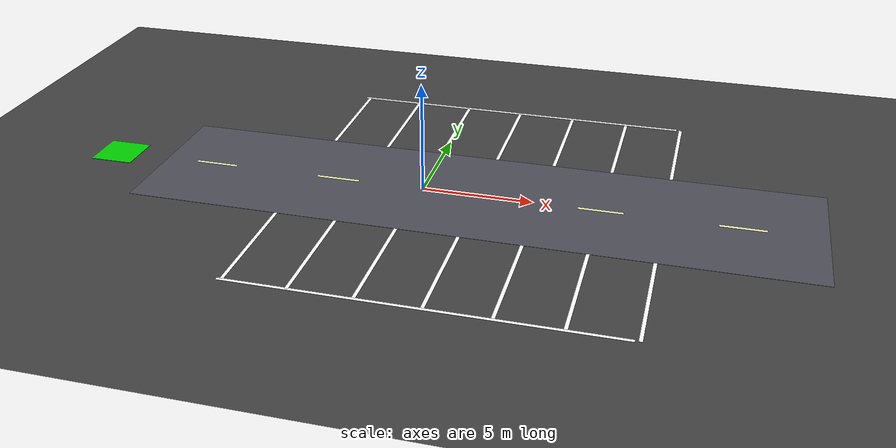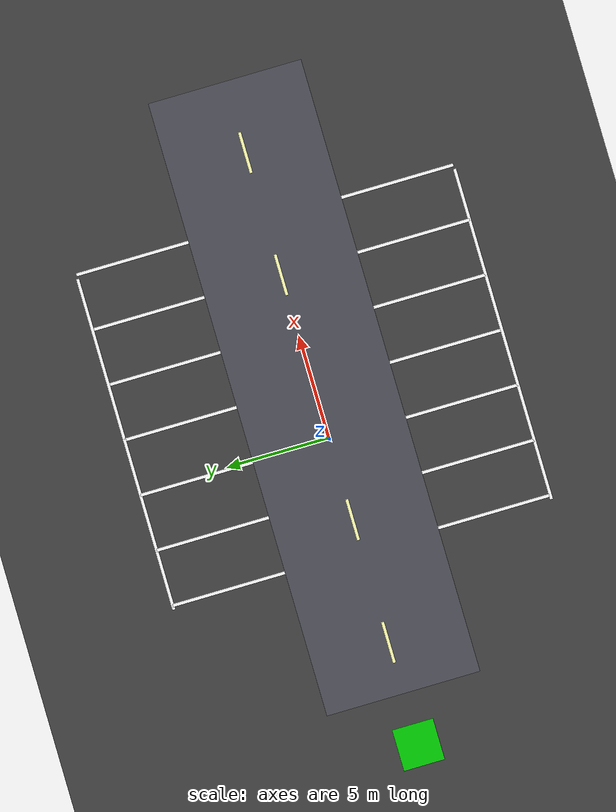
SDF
<?xml version="1.0" ?>
<sdf version="1.6">
  <world name="parking_lot_a">

    <!-- Sun / lighting -->
    <include>
      <uri>model://sun</uri>
    </include>

    <!-- Physics -->
    <physics type="ode">
      <real_time_update_rate>1000</real_time_update_rate>
      <max_step_size>0.001</max_step_size>
    </physics>

    <!-- Ground (asphalt) -->
    <model name="ground_plane">
      <static>true</static>
      <link name="link">
        <collision name="collision">
          <geometry>
            <plane>
              <normal>0 0 1</normal>
              <size>50 50</size>
            </plane>
          </geometry>
        </collision>
        <visual name="visual">
          <geometry>
            <plane>
              <normal>0 0 1</normal>
              <size>50 50</size>
            </plane>
          </geometry>
          <material>
            <ambient>0.25 0.25 0.25 1</ambient>
            <diffuse>0.25 0.25 0.25 1</diffuse>
          </material>
        </visual>
      </link>
    </model>

    <!-- Entrance marker (green box) -->
    <model name="entrance_marker">
      <static>true</static>
      <link name="link">
        <visual name="entrance_visual">
          <pose>-15 0 0 0 0 0</pose>
          <geometry>
            <box>
              <size>2 2 0.02</size>
            </box>
          </geometry>
          <material>
            <diffuse>0 0.8 0 1</diffuse>
          </material>
        </visual>
      </link>
    </model>

    <!-- Central road (horizontal) -->
    <!-- 7.5 m wide for comfortable two-way traffic -->
    <model name="main_lane">
      <static>true</static>
      <link name="link">
        <visual name="lane_surface">
          <pose>2.5 0 0.001 0 0 0</pose>
          <geometry>
            <box>
              <size>30 7.5 0.01</size>
            </box>
          </geometry>
          <material>
            <ambient>0.20 0.20 0.22 1</ambient>
            <diffuse>0.30 0.30 0.34 1</diffuse>
          </material>
        </visual>

        <!-- Center dashed line -->
        <visual name="dash1">
          <pose>-10 0 0.002 0 0 0</pose>
          <geometry><box><size>2 0.15 0.01</size></box></geometry>
          <material><diffuse>1 1 0.7 1</diffuse></material>
        </visual>
        <visual name="dash2">
          <pose>-4 0 0.002 0 0 0</pose>
          <geometry><box><size>2 0.15 0.01</size></box></geometry>
          <material><diffuse>1 1 0.7 1</diffuse></material>
        </visual>
        <visual name="dash3">
          <pose>2 0 0.002 0 0 0</pose>
          <geometry><box><size>2 0.15 0.01</size></box></geometry>
          <material><diffuse>1 1 0.7 1</diffuse></material>
        </visual>
        <visual name="dash4">
          <pose>8 0 0.002 0 0 0</pose>
          <geometry><box><size>2 0.15 0.01</size></box></geometry>
          <material><diffuse>1 1 0.7 1</diffuse></material>
        </visual>
        <visual name="dash5">
          <pose>14 0 0.002 0 0 0</pose>
          <geometry><box><size>2 0.15 0.01</size></box></geometry>
          <material><diffuse>1 1 0.7 1</diffuse></material>
        </visual>
      </link>
    </model>

    <!-- Parking bays with shared lines (realistic) -->
    <!-- Bay size ~2.7m wide x 5.5m deep -->
    <model name="parking_bays">
      <static>true</static>
      <link name="link">

        <!-- ===== Top row (A1..A6) ===== -->
        <!-- Continuous back wall -->
        <visual name="A_back_wall">
          <pose>2.4 9.25 0.002 0 0 0</pose>
          <geometry><box><size>16.2 0.15 0.01</size></box></geometry>
          <material><diffuse>1 1 1 1</diffuse></material>
        </visual>

        <!-- Left boundary of A1 -->
        <visual name="A1_left">
          <pose>-5.5 6.5 0.002 0 0 0</pose>
          <geometry><box><size>0.15 5.5 0.01</size></box></geometry>
          <material><diffuse>1 1 1 1</diffuse></material>
        </visual>

        <!-- Shared dividers -->
        <visual name="A1_A2_divide">
          <pose>-2.8 6.5 0.002 0 0 0</pose>
          <geometry><box><size>0.15 5.5 0.01</size></box></geometry>
          <material><diffuse>1 1 1 1</diffuse></material>
        </visual>
        <visual name="A2_A3_divide">
          <pose>-0.1 6.5 0.002 0 0 0</pose>
          <geometry><box><size>0.15 5.5 0.01</size></box></geometry>
          <material><diffuse>1 1 1 1</diffuse></material>
        </visual>
        <visual name="A3_A4_divide">
          <pose>2.6 6.5 0.002 0 0 0</pose>
          <geometry><box><size>0.15 5.5 0.01</size></box></geometry>
          <material><diffuse>1 1 1 1</diffuse></material>
        </visual>
        <visual name="A4_A5_divide">
          <pose>5.3 6.5 0.002 0 0 0</pose>
          <geometry><box><size>0.15 5.5 0.01</size></box></geometry>
          <material><diffuse>1 1 1 1</diffuse></material>
        </visual>
        <visual name="A5_A6_divide">
          <pose>8.0 6.5 0.002 0 0 0</pose>
          <geometry><box><size>0.15 5.5 0.01</size></box></geometry>
          <material><diffuse>1 1 1 1</diffuse></material>
        </visual>

        <!-- Right boundary of A6 -->
        <visual name="A6_right">
          <pose>10.7 6.5 0.002 0 0 0</pose>
          <geometry><box><size>0.15 5.5 0.01</size></box></geometry>
          <material><diffuse>1 1 1 1</diffuse></material>
        </visual>

        <!-- ===== Bottom row (B1..B6) ===== -->
        <!-- Continuous back wall -->
        <visual name="B_back_wall">
          <pose>2.4 -9.25 0.002 0 0 0</pose>
          <geometry><box><size>16.2 0.15 0.01</size></box></geometry>
          <material><diffuse>1 1 1 1</diffuse></material>
        </visual>

        <!-- Left boundary of B1 -->
        <visual name="B1_left">
          <pose>-5.5 -6.5 0.002 0 0 0</pose>
          <geometry><box><size>0.15 5.5 0.01</size></box></geometry>
          <material><diffuse>1 1 1 1</diffuse></material>
        </visual>

        <!-- Shared dividers -->
        <visual name="B1_B2_divide">
          <pose>-2.8 -6.5 0.002 0 0 0</pose>
          <geometry><box><size>0.15 5.5 0.01</size></box></geometry>
          <material><diffuse>1 1 1 1</diffuse></material>
        </visual>
        <visual name="B2_B3_divide">
          <pose>-0.1 -6.5 0.002 0 0 0</pose>
          <geometry><box><size>0.15 5.5 0.01</size></box></geometry>
          <material><diffuse>1 1 1 1</diffuse></material>
        </visual>
        <visual name="B3_B4_divide">
          <pose>2.6 -6.5 0.002 0 0 0</pose>
          <geometry><box><size>0.15 5.5 0.01</size></box></geometry>
          <material><diffuse>1 1 1 1</diffuse></material>
        </visual>
        <visual name="B4_B5_divide">
          <pose>5.3 -6.5 0.002 0 0 0</pose>
          <geometry><box><size>0.15 5.5 0.01</size></box></geometry>
          <material><diffuse>1 1 1 1</diffuse></material>
        </visual>
        <visual name="B5_B6_divide">
          <pose>8.0 -6.5 0.002 0 0 0</pose>
          <geometry><box><size>0.15 5.5 0.01</size></box></geometry>
          <material><diffuse>1 1 1 1</diffuse></material>
        </visual>

        <!-- Right boundary of B6 -->
        <visual name="B6_right">
          <pose>10.7 -6.5 0.002 0 0 0</pose>
          <geometry><box><size>0.15 5.5 0.01</size></box></geometry>
          <material><diffuse>1 1 1 1</diffuse></material>
        </visual>

      </link>
    </model>

  </world>
</sdf>
